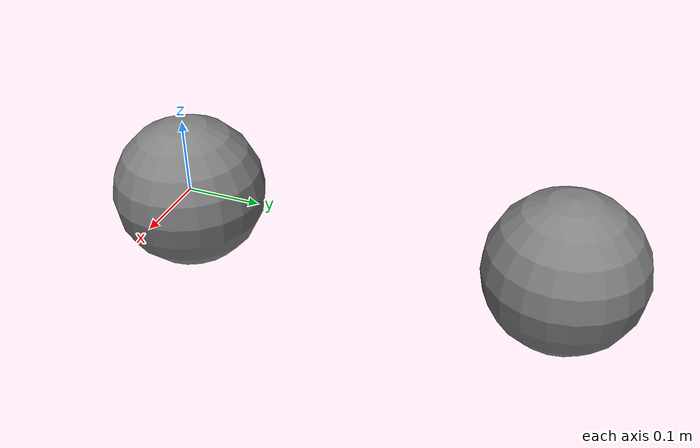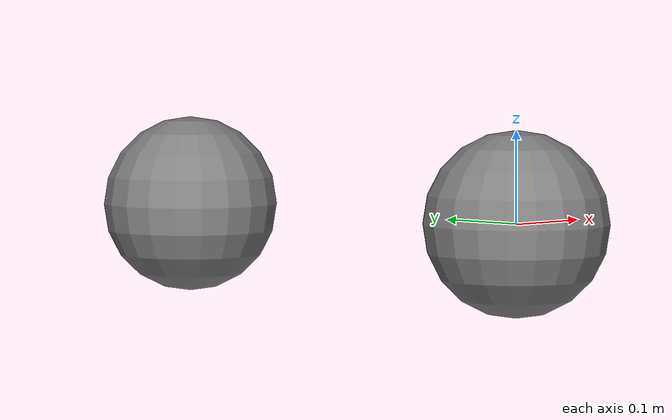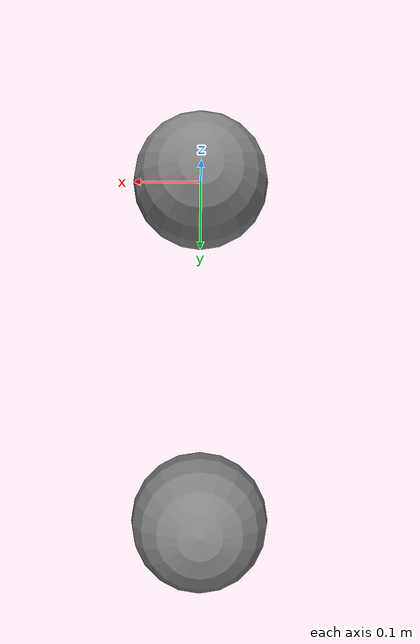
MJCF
<mujoco model="tendon_solref_custom">
            <option gravity="0 0 0" timestep="0.001" solver="PGS"/>
            <worldbody>
                <body name="a" pos="0 0 0">
                    <joint name="j1" type="hinge" axis="0 1 0"/>
                    <geom type="sphere" size="0.1" mass="1.0"/>
                    <body name="b" pos="0 0.5 0">
                        <joint name="j2" type="hinge" axis="0 1 0"/>
                        <geom type="sphere" size="0.1" mass="1.0"/>
                    </body>
                </body>
            </worldbody>
            <tendon>
                <fixed name="t1" frictionloss="2.0"
                       solreffriction="0.06 0.4" solimpfriction="0.8 0.9 0.003 0.4 2.5">
                    <joint joint="j1" coef="1.0"/>
                    <joint joint="j2" coef="-1.0"/>
                </fixed>
            </tendon>
        </mujoco>
